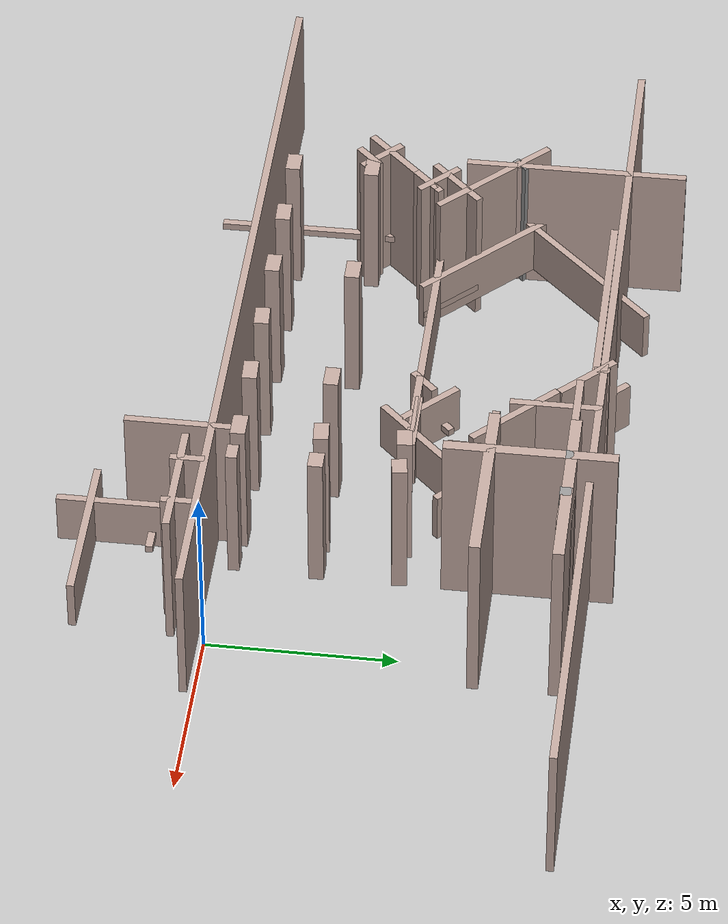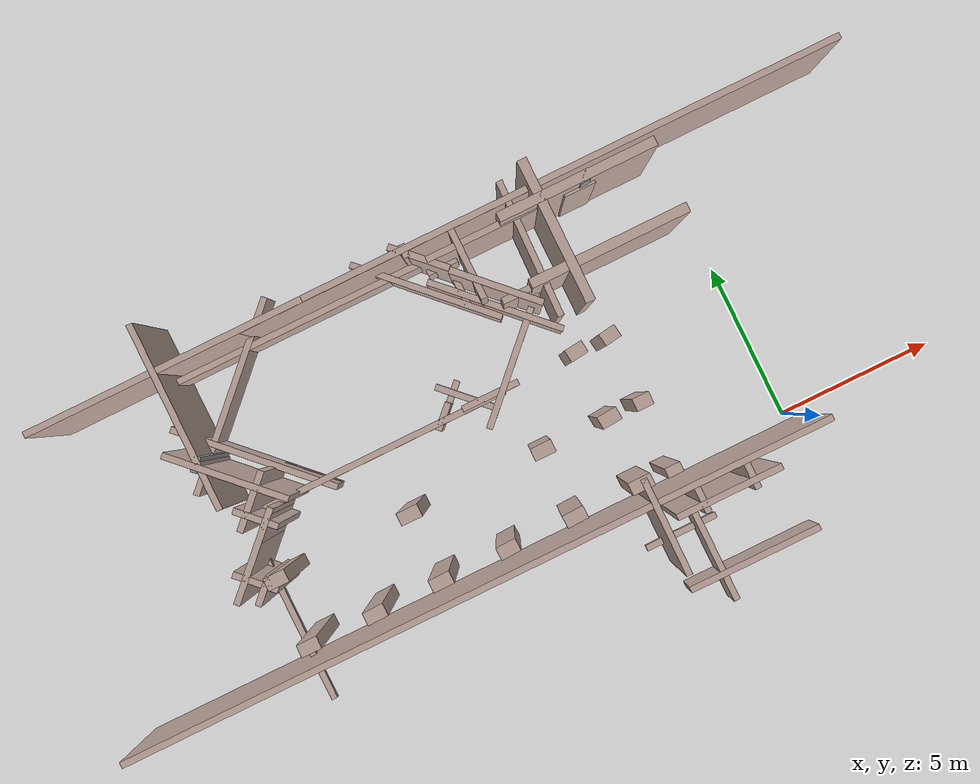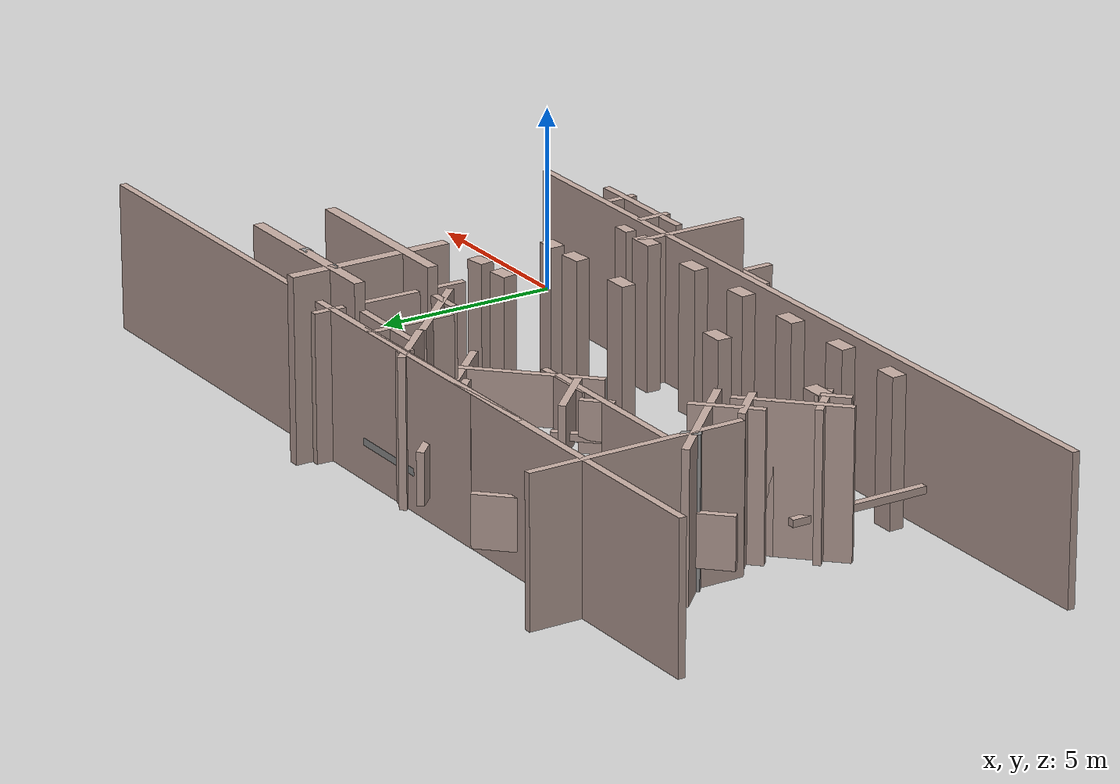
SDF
<sdf version="1.6">
 <model name="gedung_p">
  <pose>0.050512 1.27019 0 0 -0 0</pose>
  <link name="Wall_104">
   <collision name="Wall_104_Collision">
    <geometry><box><size>2.89974 0.2 4.0</size></box></geometry>
    <pose>0 0 1 0 -0 0</pose>
   </collision>
   <visual name="Wall_104_Visual">
    <pose>0 0 1 0 -0 0</pose>
    <geometry><box><size>2.89974 0.2 4.0</size></box></geometry>
    <material>
     <script><uri>file://media/materials/scripts/gazebo.material</uri><name>Gazebo/Grey</name></script>
     <ambient>0.760784 0.662745 0.627451 1</ambient>
    </material>
    <meta><layer>0</layer></meta>
   </visual>
   <pose>-6.41651 6.00131 0 0 -0 -0.785922</pose>
  </link>
  <link name="Wall_105">
   <collision name="Wall_105_Collision">
    <geometry><box><size>1.9 0.2 4.0</size></box></geometry>
    <pose>0 0 1 0 -0 0</pose>
   </collision>
   <visual name="Wall_105_Visual">
    <pose>0 0 1 0 -0 0</pose>
    <geometry><box><size>1.9 0.2 4.0</size></box></geometry>
    <material>
     <script><uri>file://media/materials/scripts/gazebo.material</uri><name>Gazebo/Grey</name></script>
     <ambient>0.760784 0.662745 0.627451 1</ambient>
    </material>
    <meta><layer>0</layer></meta>
   </visual>
   <pose>-5.51451 5.52381 0 0 -0 0</pose>
  </link>
  <link name="Wall_108">
   <collision name="Wall_108_Collision">
    <geometry><box><size>5.0 0.3 5.0</size></box></geometry>
    <pose>0 0 1.25 0 -0 0</pose>
   </collision>
   <visual name="Wall_108_Visual">
    <pose>0 0 1.25 0 -0 0</pose>
    <geometry><box><size>5.0 0.3 5.0</size></box></geometry>
    <material>
     <script><uri>file://media/materials/scripts/gazebo.material</uri><name>Gazebo/Grey</name></script>
     <ambient>0.760784 0.662745 0.627451 1</ambient>
    </material>
    <meta><layer>0</layer></meta>
   </visual>
   <pose>-3.04751 7.6698 0 0 -0 0</pose>
  </link>
  <link name="Wall_11">
   <collision name="Wall_11_Collision">
    <geometry><box><size>3.0 0.2 4.0</size></box></geometry>
    <pose>0 0 1 0 -0 0</pose>
   </collision>
   <visual name="Wall_11_Visual">
    <pose>0 0 1 0 -0 0</pose>
    <geometry><box><size>3.0 0.2 4.0</size></box></geometry>
    <material>
     <script><uri>file://media/materials/scripts/gazebo.material</uri><name>Gazebo/Grey</name></script>
     <ambient>0.760784 0.662745 0.627451 1</ambient>
    </material>
    <meta><layer>0</layer></meta>
   </visual>
   <pose>-16.1925 2.05681 0 0 -0 0.785398</pose>
  </link>
  <link name="Wall_116">
   <collision name="Wall_116_Collision">
    <geometry><box><size>2.40092 0.2 0.2</size></box></geometry>
    <pose>0 0 0.05 0 -0 0</pose>
   </collision>
   <visual name="Wall_116_Visual">
    <pose>0 0 0.05 0 -0 0</pose>
    <geometry><box><size>2.40092 0.2 0.2</size></box></geometry>
    <material>
     <script><uri>file://media/materials/scripts/gazebo.material</uri><name>Gazebo/Grey</name></script>
     <ambient>1 1 1 1</ambient>
    </material>
    <meta><layer>0</layer></meta>
   </visual>
   <pose>-7.82151 8.1548 0 0 -0 3.14159</pose>
  </link>
  <link name="Wall_119">
   <collision name="Wall_119_Collision">
    <geometry><box><size>17.4 0.2 4.0</size></box></geometry>
    <pose>0 0 1 0 -0 0</pose>
   </collision>
   <visual name="Wall_119_Visual">
    <pose>0 0 1 0 -0 0</pose>
    <geometry><box><size>17.4 0.2 4.0</size></box></geometry>
    <material>
     <script><uri>file://media/materials/scripts/gazebo.material</uri><name>Gazebo/Grey</name></script>
     <ambient>0.760784 0.662745 0.627451 1</ambient>
    </material>
    <meta><layer>0</layer></meta>
   </visual>
   <pose>-2.97151 8.1548 0 0 -0 0</pose>
  </link>
  <link name="Wall_122">
   <collision name="Wall_122_Collision">
    <geometry><box><size>4.9 0.2 1.4</size></box></geometry>
    <pose>0 0 0.35 0 -0 0</pose>
   </collision>
   <visual name="Wall_122_Visual">
    <pose>0 0 0.35 0 -0 0</pose>
    <geometry><box><size>4.9 0.2 1.4</size></box></geometry>
    <material>
     <script><uri>file://media/materials/scripts/gazebo.material</uri><name>Gazebo/Grey</name></script>
     <ambient>0.760784 0.662745 0.627451 1</ambient>
    </material>
    <meta><layer>0</layer></meta>
   </visual>
   <pose>-8.34851 6.9748 0 0 -0 -0.785398</pose>
  </link>
  <link name="Wall_124">
   <collision name="Wall_124_Collision">
    <geometry><box><size>2.4 0.2 4.0</size></box></geometry>
    <pose>0 0 1 0 -0 0</pose>
   </collision>
   <visual name="Wall_124_Visual">
    <pose>0 0 1 0 -0 0</pose>
    <geometry><box><size>2.4 0.2 4.0</size></box></geometry>
    <material>
     <script><uri>file://media/materials/scripts/gazebo.material</uri><name>Gazebo/Grey</name></script>
     <ambient>0.760784 0.662745 0.627451 1</ambient>
    </material>
    <meta><layer>0</layer></meta>
   </visual>
   <pose>-6.89351 7.02881 0 0 -0 1.5708</pose>
  </link>
  <link name="Wall_125">
   <collision name="Wall_125_Collision">
    <geometry><box><size>3.9 0.2 4.0</size></box></geometry>
    <pose>0 0 1 0 -0 0</pose>
   </collision>
   <visual name="Wall_125_Visual">
    <pose>0 0 1 0 -0 0</pose>
    <geometry><box><size>3.9 0.2 4.0</size></box></geometry>
    <material>
     <script><uri>file://media/materials/scripts/gazebo.material</uri><name>Gazebo/Grey</name></script>
     <ambient>0.760784 0.662745 0.627451 1</ambient>
    </material>
    <meta><layer>0</layer></meta>
   </visual>
   <pose>-5.96851 7.57881 0 0 -0 0</pose>
  </link>
  <link name="Wall_126">
   <collision name="Wall_126_Collision">
    <geometry><box><size>4.31102 0.2 4.0</size></box></geometry>
    <pose>0 0 1 0 -0 0</pose>
   </collision>
   <visual name="Wall_126_Visual">
    <pose>0 0 1 0 -0 0</pose>
    <geometry><box><size>4.31102 0.2 4.0</size></box></geometry>
    <material>
     <script><uri>file://media/materials/scripts/gazebo.material</uri><name>Gazebo/Grey</name></script>
     <ambient>0.760784 0.662745 0.627451 1</ambient>
    </material>
    <meta><layer>0</layer></meta>
   </visual>
   <pose>-5.06651 6.55131 0 0 -0 -1.59318</pose>
  </link>
  <link name="Wall_128">
   <collision name="Wall_128_Collision">
    <geometry><box><size>4.5 0.3 5.0</size></box></geometry>
    <pose>0 0 1.25 0 -0 0</pose>
   </collision>
   <visual name="Wall_128_Visual">
    <pose>0 0 1.25 0 -0 0</pose>
    <geometry><box><size>4.5 0.3 5.0</size></box></geometry>
    <material>
     <script><uri>file://media/materials/scripts/gazebo.material</uri><name>Gazebo/Grey</name></script>
     <ambient>0.760784 0.662745 0.627451 1</ambient>
    </material>
    <meta><layer>0</layer></meta>
   </visual>
   <pose>-4.22251 6.61981 0 0 -0 -1.5708</pose>
  </link>
  <link name="Wall_129">
   <collision name="Wall_129_Collision">
    <geometry><box><size>5.0 0.3 5.0</size></box></geometry>
    <pose>0 0 1.25 0 -0 0</pose>
   </collision>
   <visual name="Wall_129_Visual">
    <pose>0 0 1.25 0 -0 0</pose>
    <geometry><box><size>5.0 0.3 5.0</size></box></geometry>
    <material>
     <script><uri>file://media/materials/scripts/gazebo.material</uri><name>Gazebo/Grey</name></script>
     <ambient>0.760784 0.662745 0.627451 1</ambient>
    </material>
    <meta><layer>0</layer></meta>
   </visual>
   <pose>-3.04751 5.5698 0 0 -0 0</pose>
  </link>
  <link name="Wall_17">
   <collision name="Wall_17_Collision">
    <geometry><box><size>0.899858 0.2 4.0</size></box></geometry>
    <pose>0 0 1 0 -0 0</pose>
   </collision>
   <visual name="Wall_17_Visual">
    <pose>0 0 1 0 -0 0</pose>
    <geometry><box><size>0.899858 0.2 4.0</size></box></geometry>
    <material>
     <script><uri>file://media/materials/scripts/gazebo.material</uri><name>Gazebo/Grey</name></script>
     <ambient>0.760784 0.662745 0.627451 1</ambient>
    </material>
    <meta><layer>0</layer></meta>
   </visual>
   <pose>-15.574 2.6753 0 0 -0 0.785398</pose>
  </link>
  <link name="Wall_18">
   <collision name="Wall_18_Collision">
    <geometry><box><size>1.4 0.2 4.0</size></box></geometry>
    <pose>0 0 1 0 -0 0</pose>
   </collision>
   <visual name="Wall_18_Visual">
    <pose>0 0 1 0 -0 0</pose>
    <geometry><box><size>1.4 0.2 4.0</size></box></geometry>
    <material>
     <script><uri>file://media/materials/scripts/gazebo.material</uri><name>Gazebo/Grey</name></script>
     <ambient>0.760784 0.662745 0.627451 1</ambient>
    </material>
    <meta><layer>0</layer></meta>
   </visual>
   <pose>-15.6625 3.01131 0 0 -0 2.35502</pose>
  </link>
  <link name="Wall_19">
   <collision name="Wall_19_Collision">
    <geometry><box><size>1.899822 0.2 4.0</size></box></geometry>
    <pose>0 0 1 0 -0 0</pose>
   </collision>
   <visual name="Wall_19_Visual">
    <pose>0 0 1 0 -0 0</pose>
    <geometry><box><size>1.899822 0.2 4.0</size></box></geometry>
    <material>
     <script><uri>file://media/materials/scripts/gazebo.material</uri><name>Gazebo/Grey</name></script>
     <ambient>0.760784 0.662745 0.627451 1</ambient>
    </material>
    <meta><layer>0</layer></meta>
   </visual>
   <pose>-15.574 3.52431 0 0 -0 0.785398</pose>
  </link>
  <link name="Wall_196">
   <collision name="Wall_196_Collision">
    <geometry><box><size>4.4 0.2 1.4</size></box></geometry>
    <pose>0 0 0.35 0 -0 0</pose>
   </collision>
   <visual name="Wall_196_Visual">
    <pose>0 0 0.35 0 -0 0</pose>
    <geometry><box><size>4.4 0.2 1.4</size></box></geometry>
    <material>
     <script><uri>file://media/materials/scripts/gazebo.material</uri><name>Gazebo/Grey</name></script>
     <ambient>0.760784 0.662745 0.627451 1</ambient>
    </material>
    <meta><layer>0</layer></meta>
   </visual>
   <pose>-2.91051 -4.77419 0 0 -0 3.14159</pose>
  </link>
  <link name="Wall_197">
   <collision name="Wall_197_Collision">
    <geometry><box><size>3.4 0.2 1.4</size></box></geometry>
    <pose>0 0 0.35 0 -0 0</pose>
   </collision>
   <visual name="Wall_197_Visual">
    <pose>0 0 0.35 0 -0 0</pose>
    <geometry><box><size>3.4 0.2 1.4</size></box></geometry>
    <material>
     <script><uri>file://media/materials/scripts/gazebo.material</uri><name>Gazebo/Grey</name></script>
     <ambient>0.760784 0.662745 0.627451 1</ambient>
    </material>
    <meta><layer>0</layer></meta>
   </visual>
   <pose>-3.96051 -3.97419 0 0 -0 1.5708</pose>
  </link>
  <link name="Wall_198">
   <collision name="Wall_198_Collision">
    <geometry><box><size>2.4 0.2 0.2</size></box></geometry>
    <pose>0 0 0.05 0 -0 0</pose>
   </collision>
   <visual name="Wall_198_Visual">
    <pose>0 0 0.05 0 -0 0</pose>
    <geometry><box><size>2.4 0.2 0.2</size></box></geometry>
    <material>
     <script><uri>file://media/materials/scripts/gazebo.material</uri><name>Gazebo/Grey</name></script>
     <ambient>0.760784 0.662745 0.627451 1</ambient>
    </material>
    <meta><layer>0</layer></meta>
   </visual>
   <pose>-4.51051 -3.1742 0 0 -0 3.14159</pose>
  </link>
  <link name="Wall_199">
   <collision name="Wall_199_Collision">
    <geometry><box><size>3.10826 0.2 4.0</size></box></geometry>
    <pose>0 0 1 0 -0 0</pose>
   </collision>
   <visual name="Wall_199_Visual">
    <pose>0 0 1 0 -0 0</pose>
    <geometry><box><size>3.10826 0.2 4.0</size></box></geometry>
    <material>
     <script><uri>file://media/materials/scripts/gazebo.material</uri><name>Gazebo/Grey</name></script>
     <ambient>0.760784 0.662745 0.627451 1</ambient>
    </material>
    <meta><layer>0</layer></meta>
   </visual>
   <pose>-5.05601 -2.44719 0 0 -0 1.56461</pose>
  </link>
  <link name="Wall_201">
   <collision name="Wall_201_Collision">
    <geometry><box><size>0.9 0.2 4.0</size></box></geometry>
    <pose>0 0 1 0 -0 0</pose>
   </collision>
   <visual name="Wall_201_Visual">
    <pose>0 0 1 0 -0 0</pose>
    <geometry><box><size>0.9 0.2 4.0</size></box></geometry>
    <material>
     <script><uri>file://media/materials/scripts/gazebo.material</uri><name>Gazebo/Grey</name></script>
     <ambient>0.760784 0.662745 0.627451 1</ambient>
    </material>
    <meta><layer>0</layer></meta>
   </visual>
   <pose>-3.75851 -2.16319 0 0 -0 -1.5708</pose>
  </link>
  <link name="Wall_202">
   <collision name="Wall_202_Collision">
    <geometry><box><size>3.4 0.2 4.0</size></box></geometry>
    <pose>0 0 1 0 -0 0</pose>
   </collision>
   <visual name="Wall_202_Visual">
    <pose>0 0 1 0 -0 0</pose>
    <geometry><box><size>3.4 0.2 4.0</size></box></geometry>
    <material>
     <script><uri>file://media/materials/scripts/gazebo.material</uri><name>Gazebo/Grey</name></script>
     <ambient>0.760784 0.662745 0.627451 1</ambient>
    </material>
    <meta><layer>0</layer></meta>
   </visual>
   <pose>-2.95851 -2.33819 0 0 -0 0</pose>
  </link>
  <link name="Wall_203">
   <collision name="Wall_203_Collision">
    <geometry><box><size>0.900952 0.2 4.0</size></box></geometry>
    <pose>0 0 1 0 -0 0</pose>
   </collision>
   <visual name="Wall_203_Visual">
    <pose>0 0 1 0 -0 0</pose>
    <geometry><box><size>0.900952 0.2 4.0</size></box></geometry>
    <material>
     <script><uri>file://media/materials/scripts/gazebo.material</uri><name>Gazebo/Grey</name></script>
     <ambient>0.760784 0.662745 0.627451 1</ambient>
    </material>
    <meta><layer>0</layer></meta>
   </visual>
   <pose>-2.15851 -2.16319 0 0 -0 1.5708</pose>
  </link>
  <link name="Wall_21">
   <collision name="Wall_21_Collision">
    <geometry><box><size>3.9 0.2 4.0</size></box></geometry>
    <pose>0 0 1 0 -0 0</pose>
   </collision>
   <visual name="Wall_21_Visual">
    <pose>0 0 1 0 -0 0</pose>
    <geometry><box><size>3.9 0.2 4.0</size></box></geometry>
    <material>
     <script><uri>file://media/materials/scripts/gazebo.material</uri><name>Gazebo/Grey</name></script>
     <ambient>0.760784 0.662745 0.627451 1</ambient>
    </material>
    <meta><layer>0</layer></meta>
   </visual>
   <pose>-15.9275 4.47881 0 0 -0 2.35619</pose>
  </link>
  <link name="Wall_218">
   <collision name="Wall_218_Collision">
    <geometry><box><size>0.644524 0.4 4.0</size></box></geometry>
    <pose>0 0 1 0 -0 0</pose>
   </collision>
   <visual name="Wall_218_Visual">
    <pose>0 0 1 0 -0 0</pose>
    <geometry><box><size>0.644524 0.4 4.0</size></box></geometry>
    <material>
     <script><uri>file://media/materials/scripts/gazebo.material</uri><name>Gazebo/Grey</name></script>
     <ambient>0.760784 0.662745 0.627451 1</ambient>
    </material>
    <meta><layer>0</layer></meta>
   </visual>
   <pose>-15.9022 -1.01464 0 0 -0 0</pose>
  </link>
  <link name="Wall_22">
   <collision name="Wall_22_Collision">
    <geometry><box><size>0.493318 0.2 4.0</size></box></geometry>
    <pose>0 0 1 0 -0 0</pose>
   </collision>
   <visual name="Wall_22_Visual">
    <pose>0 0 1 0 -0 0</pose>
    <geometry><box><size>0.493318 0.2 4.0</size></box></geometry>
    <material>
     <script><uri>file://media/materials/scripts/gazebo.material</uri><name>Gazebo/Grey</name></script>
     <ambient>1 1 1 1</ambient>
    </material>
    <meta><layer>0</layer></meta>
   </visual>
   <pose>-16.533 5.1878 0 0 -0 0.848118</pose>
  </link>
  <link name="Wall_220">
   <collision name="Wall_220_Collision">
    <geometry><box><size>0.66193 0.4 4.0</size></box></geometry>
    <pose>0 0 1 0 -0 0</pose>
   </collision>
   <visual name="Wall_220_Visual">
    <pose>0 0 1 0 -0 0</pose>
    <geometry><box><size>0.66193 0.4 4.0</size></box></geometry>
    <material>
     <script><uri>file://media/materials/scripts/gazebo.material</uri><name>Gazebo/Grey</name></script>
     <ambient>0.760784 0.662745 0.627451 1</ambient>
    </material>
    <meta><layer>0</layer></meta>
   </visual>
   <pose>-13.7647 -1.01253 0 0 -0 0.032247</pose>
  </link>
  <link name="Wall_223">
   <collision name="Wall_223_Collision">
    <geometry><box><size>0.67166 0.4 4.0</size></box></geometry>
    <pose>0 0 1 0 -0 0</pose>
   </collision>
   <visual name="Wall_223_Visual">
    <pose>0 0 1 0 -0 0</pose>
    <geometry><box><size>0.67166 0.4 4.0</size></box></geometry>
    <material>
     <script><uri>file://media/materials/scripts/gazebo.material</uri><name>Gazebo/Grey</name></script>
     <ambient>0.760784 0.662745 0.627451 1</ambient>
    </material>
    <meta><layer>0</layer></meta>
   </visual>
   <pose>-15.9129 1.14369 0 0 -0 3.14159</pose>
  </link>
  <link name="Wall_225">
   <collision name="Wall_225_Collision">
    <geometry><box><size>0.673398 0.4 4.0</size></box></geometry>
    <pose>0 0 1 0 -0 0</pose>
   </collision>
   <visual name="Wall_225_Visual">
    <pose>0 0 1 0 -0 0</pose>
    <geometry><box><size>0.673398 0.4 4.0</size></box></geometry>
    <material>
     <script><uri>file://media/materials/scripts/gazebo.material</uri><name>Gazebo/Grey</name></script>
     <ambient>0.760784 0.662745 0.627451 1</ambient>
    </material>
    <meta><layer>0</layer></meta>
   </visual>
   <pose>-11.6269 -1.00331 0 0 -0 0</pose>
  </link>
  <link name="Wall_227">
   <collision name="Wall_227_Collision">
    <geometry><box><size>0.641584 0.4 4.0</size></box></geometry>
    <pose>0 0 1 0 -0 0</pose>
   </collision>
   <visual name="Wall_227_Visual">
    <pose>0 0 1 0 -0 0</pose>
    <geometry><box><size>0.641584 0.4 4.0</size></box></geometry>
    <material>
     <script><uri>file://media/materials/scripts/gazebo.material</uri><name>Gazebo/Grey</name></script>
     <ambient>0.760784 0.662745 0.627451 1</ambient>
    </material>
    <meta><layer>0</layer></meta>
   </visual>
   <pose>-9.46431 -1.01152 0 0 -0 0.045423</pose>
  </link>
  <link name="Wall_229">
   <collision name="Wall_229_Collision">
    <geometry><box><size>0.684544 0.4 4.0</size></box></geometry>
    <pose>0 0 1 0 -0 0</pose>
   </collision>
   <visual name="Wall_229_Visual">
    <pose>0 0 1 0 -0 0</pose>
    <geometry><box><size>0.684544 0.4 4.0</size></box></geometry>
    <material>
     <script><uri>file://media/materials/scripts/gazebo.material</uri><name>Gazebo/Grey</name></script>
     <ambient>0.760784 0.662745 0.627451 1</ambient>
    </material>
    <meta><layer>0</layer></meta>
   </visual>
   <pose>-7.30446 -1.02245 0 0 -0 -3.10315</pose>
  </link>
  <link name="Wall_23">
   <collision name="Wall_23_Collision">
    <geometry><box><size>6.0 0.2 4.0</size></box></geometry>
    <pose>0 0 1 0 -0 0</pose>
   </collision>
   <visual name="Wall_23_Visual">
    <pose>0 0 1 0 -0 0</pose>
    <geometry><box><size>6.0 0.2 4.0</size></box></geometry>
    <material>
     <script><uri>file://media/materials/scripts/gazebo.material</uri><name>Gazebo/Grey</name></script>
     <ambient>0.760784 0.662745 0.627451 1</ambient>
    </material>
    <meta><layer>0</layer></meta>
   </visual>
   <pose>-16.4845 6.6928 0 0 -0 1.5708</pose>
  </link>
  <link name="Wall_231">
   <collision name="Wall_231_Collision">
    <geometry><box><size>0.717142 0.4 4.0</size></box></geometry>
    <pose>0 0 1 0 -0 0</pose>
   </collision>
   <visual name="Wall_231_Visual">
    <pose>0 0 1 0 -0 0</pose>
    <geometry><box><size>0.717142 0.4 4.0</size></box></geometry>
    <material>
     <script><uri>file://media/materials/scripts/gazebo.material</uri><name>Gazebo/Grey</name></script>
     <ambient>0.760784 0.662745 0.627451 1</ambient>
    </material>
    <meta><layer>0</layer></meta>
   </visual>
   <pose>-5.16375 -1.01425 0 0 -0 3.14159</pose>
  </link>
  <link name="Wall_25">
   <collision name="Wall_25_Collision">
    <geometry><box><size>16.4078 0.2 4.0</size></box></geometry>
    <pose>0 0 1 0 -0 0</pose>
   </collision>
   <visual name="Wall_25_Visual">
    <pose>0 0 1 0 -0 0</pose>
    <geometry><box><size>16.4078 0.2 4.0</size></box></geometry>
    <material>
     <script><uri>file://media/materials/scripts/gazebo.material</uri><name>Gazebo/Grey</name></script>
     <ambient>0.760784 0.662745 0.627451 1</ambient>
    </material>
    <meta><layer>0</layer></meta>
   </visual>
   <pose>-12.4325 8.1463 0 0 -0 0.000864</pose>
  </link>
  <link name="Wall_26">
   <collision name="Wall_26_Collision">
    <geometry><box><size>7.1878 0.2 4.0</size></box></geometry>
    <pose>0 0 1 0 -0 0</pose>
   </collision>
   <visual name="Wall_26_Visual">
    <pose>0 0 1 0 -0 0</pose>
    <geometry><box><size>7.1878 0.2 4.0</size></box></geometry>
    <material>
     <script><uri>file://media/materials/scripts/gazebo.material</uri><name>Gazebo/Grey</name></script>
     <ambient>0.760784 0.662745 0.627451 1</ambient>
    </material>
    <meta><layer>0</layer></meta>
   </visual>
   <pose>-10.1275 8.1463 0 0 -0 -3.13959</pose>
  </link>
  <link name="Wall_266">
   <collision name="Wall_266_Collision">
    <geometry><box><size>0.66846 0.4 4.0</size></box></geometry>
    <pose>0 0 1 0 -0 0</pose>
   </collision>
   <visual name="Wall_266_Visual">
    <pose>0 0 1 0 -0 0</pose>
    <geometry><box><size>0.66846 0.4 4.0</size></box></geometry>
    <material>
     <script><uri>file://media/materials/scripts/gazebo.material</uri><name>Gazebo/Grey</name></script>
     <ambient>0.760784 0.662745 0.627451 1</ambient>
    </material>
    <meta><layer>0</layer></meta>
   </visual>
   <pose>-11.6102 1.14518 0 0 -0 0</pose>
  </link>
  <link name="Wall_268">
   <collision name="Wall_268_Collision">
    <geometry><box><size>0.667778 0.4 4.0</size></box></geometry>
    <pose>0 0 1 0 -0 0</pose>
   </collision>
   <visual name="Wall_268_Visual">
    <pose>0 0 1 0 -0 0</pose>
    <geometry><box><size>0.667778 0.4 4.0</size></box></geometry>
    <material>
     <script><uri>file://media/materials/scripts/gazebo.material</uri><name>Gazebo/Grey</name></script>
     <ambient>0.760784 0.662745 0.627451 1</ambient>
    </material>
    <meta><layer>0</layer></meta>
   </visual>
   <pose>-7.29702 1.12605 0 0 -0 3.14159</pose>
  </link>
  <link name="Wall_270">
   <collision name="Wall_270_Collision">
    <geometry><box><size>0.63032 0.4 4.0</size></box></geometry>
    <pose>0 0 1 0 -0 0</pose>
   </collision>
   <visual name="Wall_270_Visual">
    <pose>0 0 1 0 -0 0</pose>
    <geometry><box><size>0.63032 0.4 4.0</size></box></geometry>
    <material>
     <script><uri>file://media/materials/scripts/gazebo.material</uri><name>Gazebo/Grey</name></script>
     <ambient>0.760784 0.662745 0.627451 1</ambient>
    </material>
    <meta><layer>0</layer></meta>
   </visual>
   <pose>-5.1548 1.12127 0 0 -0 0.083141</pose>
  </link>
  <link name="Wall_272">
   <collision name="Wall_272_Collision">
    <geometry><box><size>0.53389 0.4 4.0</size></box></geometry>
    <pose>0 0 1 0 -0 0</pose>
   </collision>
   <visual name="Wall_272_Visual">
    <pose>0 0 1 0 -0 0</pose>
    <geometry><box><size>0.53389 0.4 4.0</size></box></geometry>
    <material>
     <script><uri>file://media/materials/scripts/gazebo.material</uri><name>Gazebo/Grey</name></script>
     <ambient>0.760784 0.662745 0.627451 1</ambient>
    </material>
    <meta><layer>0</layer></meta>
   </visual>
   <pose>-4.06934 1.12605 0 0 -0 0</pose>
  </link>
  <link name="Wall_274">
   <collision name="Wall_274_Collision">
    <geometry><box><size>0.573202 0.4 4.0</size></box></geometry>
    <pose>0 0 1 0 -0 0</pose>
   </collision>
   <visual name="Wall_274_Visual">
    <pose>0 0 1 0 -0 0</pose>
    <geometry><box><size>0.573202 0.4 4.0</size></box></geometry>
    <material>
     <script><uri>file://media/materials/scripts/gazebo.material</uri><name>Gazebo/Grey</name></script>
     <ambient>0.760784 0.662745 0.627451 1</ambient>
    </material>
    <meta><layer>0</layer></meta>
   </visual>
   <pose>-5.16914 3.28263 0 0 -0 0.110657</pose>
  </link>
  <link name="Wall_276">
   <collision name="Wall_276_Collision">
    <geometry><box><size>0.535248 0.4 4.0</size></box></geometry>
    <pose>0 0 1 0 -0 0</pose>
   </collision>
   <visual name="Wall_276_Visual">
    <pose>0 0 1 0 -0 0</pose>
    <geometry><box><size>0.535248 0.4 4.0</size></box></geometry>
    <material>
     <script><uri>file://media/materials/scripts/gazebo.material</uri><name>Gazebo/Grey</name></script>
     <ambient>0.760784 0.662745 0.627451 1</ambient>
    </material>
    <meta><layer>0</layer></meta>
   </visual>
   <pose>-4.08846 3.27306 0 0 -0 0.141897</pose>
  </link>
  <link name="Wall_278">
   <collision name="Wall_278_Collision">
    <geometry><box><size>1.0 0.4 4.0</size></box></geometry>
    <pose>0 0 1 0 -0 0</pose>
   </collision>
   <visual name="Wall_278_Visual">
    <pose>0 0 1 0 -0 0</pose>
    <geometry><box><size>1.0 0.4 4.0</size></box></geometry>
    <material>
     <script><uri>file://media/materials/scripts/gazebo.material</uri><name>Gazebo/Grey</name></script>
     <ambient>0.760784 0.662745 0.627451 1</ambient>
    </material>
    <meta><layer>0</layer></meta>
   </visual>
   <pose>-3.00554 7.6387 0 0 -0 0</pose>
  </link>
  <link name="Wall_279">
   <collision name="Wall_279_Collision">
    <geometry><box><size>0.3 0.3 5.0</size></box></geometry>
    <pose>0 0 1.25 0 -0 0</pose>
   </collision>
   <visual name="Wall_279_Visual">
    <pose>0 0 1.25 0 -0 0</pose>
    <geometry><box><size>0.3 0.3 5.0</size></box></geometry>
    <material>
     <script><uri>file://media/materials/scripts/gazebo.material</uri><name>Gazebo/Grey</name></script>
     <ambient>1 1 1 1</ambient>
    </material>
    <meta><layer>0</layer></meta>
   </visual>
   <pose>-2.85554 7.6387 0 0 -0 0</pose>
  </link>
  <link name="Wall_28">
   <collision name="Wall_28_Collision">
    <geometry><box><size>0.414774 0.2 4.0</size></box></geometry>
    <pose>0 0 1 0 -0 0</pose>
   </collision>
   <visual name="Wall_28_Visual">
    <pose>0 0 1 0 -0 0</pose>
    <geometry><box><size>0.414774 0.2 4.0</size></box></geometry>
    <material>
     <script><uri>file://media/materials/scripts/gazebo.material</uri><name>Gazebo/Grey</name></script>
     <ambient>0.760784 0.662745 0.627451 1</ambient>
    </material>
    <meta><layer>0</layer></meta>
   </visual>
   <pose>-8.38251 8.0963 0 0 -0 -1.60816</pose>
  </link>
  <link name="Wall_285">
   <collision name="Wall_285_Collision">
    <geometry><box><size>0.5 0.3 4.0</size></box></geometry>
    <pose>0 0 1 0 -0 0</pose>
   </collision>
   <visual name="Wall_285_Visual">
    <pose>0 0 1 0 -0 0</pose>
    <geometry><box><size>0.5 0.3 4.0</size></box></geometry>
    <material>
     <script><uri>file://media/materials/scripts/gazebo.material</uri><name>Gazebo/Grey</name></script>
     <ambient>0.760784 0.662745 0.627451 1</ambient>
    </material>
    <meta><layer>0</layer></meta>
   </visual>
   <pose>-4.12951 -1.05419 0 0 -0 0</pose>
  </link>
  <link name="Wall_29">
   <collision name="Wall_29_Collision">
    <geometry><box><size>1.9 0.2 4.0</size></box></geometry>
    <pose>0 0 1 0 -0 0</pose>
   </collision>
   <visual name="Wall_29_Visual">
    <pose>0 0 1 0 -0 0</pose>
    <geometry><box><size>1.9 0.2 4.0</size></box></geometry>
    <material>
     <script><uri>file://media/materials/scripts/gazebo.material</uri><name>Gazebo/Grey</name></script>
     <ambient>0.760784 0.662745 0.627451 1</ambient>
    </material>
    <meta><layer>0</layer></meta>
   </visual>
   <pose>-8.08401 7.7423 0 0 -0 -0.785398</pose>
  </link>
  <link name="Wall_30">
   <collision name="Wall_30_Collision">
    <geometry><box><size>1.0 0.2 1.4</size></box></geometry>
    <pose>0 0 0.35 0 -0 0</pose>
   </collision>
   <visual name="Wall_30_Visual">
    <pose>0 0 0.35 0 -0 0</pose>
    <geometry><box><size>1.0 0.2 1.4</size></box></geometry>
    <material>
     <script><uri>file://media/materials/scripts/gazebo.material</uri><name>Gazebo/Grey</name></script>
     <ambient>0.760784 0.662745 0.627451 1</ambient>
    </material>
    <meta><layer>0</layer></meta>
   </visual>
   <pose>-7.58351 7.4418 0 0 -0 0</pose>
  </link>
  <link name="Wall_36">
   <collision name="Wall_36_Collision">
    <geometry><box><size>4.4 0.2 1.4</size></box></geometry>
    <pose>0 0 0.35 0 -0 0</pose>
   </collision>
   <visual name="Wall_36_Visual">
    <pose>0 0 0.35 0 -0 0</pose>
    <geometry><box><size>4.4 0.2 1.4</size></box></geometry>
    <material>
     <script><uri>file://media/materials/scripts/gazebo.material</uri><name>Gazebo/Grey</name></script>
     <ambient>0.760784 0.662745 0.627451 1</ambient>
    </material>
    <meta><layer>0</layer></meta>
   </visual>
   <pose>-6.64101 5.64931 0 0 -0 -0.785398</pose>
  </link>
  <link name="Wall_38">
   <collision name="Wall_38_Collision">
    <geometry><box><size>4.9 0.2 1.4</size></box></geometry>
    <pose>0 0 0.35 0 -0 0</pose>
   </collision>
   <visual name="Wall_38_Visual">
    <pose>0 0 0.35 0 -0 0</pose>
    <geometry><box><size>4.9 0.2 1.4</size></box></geometry>
    <material>
     <script><uri>file://media/materials/scripts/gazebo.material</uri><name>Gazebo/Grey</name></script>
     <ambient>0.760784 0.662745 0.627451 1</ambient>
    </material>
    <meta><layer>0</layer></meta>
   </visual>
   <pose>-6.72951 4.0758 0 0 -0 -2.35619</pose>
  </link>
  <link name="Wall_39">
   <collision name="Wall_39_Collision">
    <geometry><box><size>1.899402 0.2 1.4</size></box></geometry>
    <pose>0 0 0.35 0 -0 0</pose>
   </collision>
   <visual name="Wall_39_Visual">
    <pose>0 0 0.35 0 -0 0</pose>
    <geometry><box><size>1.899402 0.2 1.4</size></box></geometry>
    <material>
     <script><uri>file://media/materials/scripts/gazebo.material</uri><name>Gazebo/Grey</name></script>
     <ambient>0.760784 0.662745 0.627451 1</ambient>
    </material>
    <meta><layer>0</layer></meta>
   </visual>
   <pose>-7.98551 3.2448 0 0 -0 3.14159</pose>
  </link>
  <link name="Wall_40">
   <collision name="Wall_40_Collision">
    <geometry><box><size>1.899884 0.2 1.4</size></box></geometry>
    <pose>0 0 0.35 0 -0 0</pose>
   </collision>
   <visual name="Wall_40_Visual">
    <pose>0 0 0.35 0 -0 0</pose>
    <geometry><box><size>1.899884 0.2 1.4</size></box></geometry>
    <material>
     <script><uri>file://media/materials/scripts/gazebo.material</uri><name>Gazebo/Grey</name></script>
     <ambient>0.760784 0.662745 0.627451 1</ambient>
    </material>
    <meta><layer>0</layer></meta>
   </visual>
   <pose>-8.71101 3.5453 0 0 -0 2.35619</pose>
  </link>
  <link name="Wall_42">
   <collision name="Wall_42_Collision">
    <geometry><box><size>1.399154 0.2 0.2</size></box></geometry>
    <pose>0 0 0.05 0 -0 0</pose>
   </collision>
   <visual name="Wall_42_Visual">
    <pose>0 0 0.05 0 -0 0</pose>
    <geometry><box><size>1.399154 0.2 0.2</size></box></geometry>
    <material>
     <script><uri>file://media/materials/scripts/gazebo.material</uri><name>Gazebo/Grey</name></script>
     <ambient>0.760784 0.662745 0.627451 1</ambient>
    </material>
    <meta><layer>0</layer></meta>
   </visual>
   <pose>-9.22351 3.63381 0 0 -0 -2.35619</pose>
  </link>
  <link name="Wall_45">
   <collision name="Wall_45_Collision">
    <geometry><box><size>0.899902 0.2 1.4</size></box></geometry>
    <pose>0 0 0.35 0 -0 0</pose>
   </collision>
   <visual name="Wall_45_Visual">
    <pose>0 0 0.35 0 -0 0</pose>
    <geometry><box><size>0.899902 0.2 1.4</size></box></geometry>
    <material>
     <script><uri>file://media/materials/scripts/gazebo.material</uri><name>Gazebo/Grey</name></script>
     <ambient>0.760784 0.662745 0.627451 1</ambient>
    </material>
    <meta><layer>0</layer></meta>
   </visual>
   <pose>-9.55901 3.29831 0 0 -0 -2.35619</pose>
  </link>
  <link name="Wall_46">
   <collision name="Wall_46_Collision">
    <geometry><box><size>8.4 0.2 1.4</size></box></geometry>
    <pose>0 0 0.35 0 -0 0</pose>
   </collision>
   <visual name="Wall_46_Visual">
    <pose>0 0 0.35 0 -0 0</pose>
    <geometry><box><size>8.4 0.2 1.4</size></box></geometry>
    <material>
     <script><uri>file://media/materials/scripts/gazebo.material</uri><name>Gazebo/Grey</name></script>
     <ambient>0.760784 0.662745 0.627451 1</ambient>
    </material>
    <meta><layer>0</layer></meta>
   </visual>
   <pose>-11.7325 3.17481 0 0 -0 3.14159</pose>
  </link>
  <link name="Wall_48">
   <collision name="Wall_48_Collision">
    <geometry><box><size>1.10602 0.2 1.4</size></box></geometry>
    <pose>0 0 0.35 0 -0 0</pose>
   </collision>
   <visual name="Wall_48_Visual">
    <pose>0 0 0.35 0 -0 0</pose>
    <geometry><box><size>1.10602 0.2 1.4</size></box></geometry>
    <material>
     <script><uri>file://media/materials/scripts/gazebo.material</uri><name>Gazebo/Grey</name></script>
     <ambient>0.760784 0.662745 0.627451 1</ambient>
    </material>
    <meta><layer>0</layer></meta>
   </visual>
   <pose>-7.38501 6.61831 0 0 -0 -1.56417</pose>
  </link>
  <link name="Wall_5">
   <collision name="Wall_5_Collision">
    <geometry><box><size>5.4 0.2 0.2</size></box></geometry>
    <pose>0 0 0.05 0 -0 0</pose>
   </collision>
   <visual name="Wall_5_Visual">
    <pose>0 0 0.05 0 -0 0</pose>
    <geometry><box><size>5.4 0.2 0.2</size></box></geometry>
    <material>
     <script><uri>file://media/materials/scripts/gazebo.material</uri><name>Gazebo/Grey</name></script>
     <ambient>0.760784 0.662745 0.627451 1</ambient>
    </material>
    <meta><layer>0</layer></meta>
   </visual>
   <pose>-16.5105 -0.410195 0 0 -0 -1.5708</pose>
  </link>
  <link name="Wall_52">
   <collision name="Wall_52_Collision">
    <geometry><box><size>1.394016 0.2 0.2</size></box></geometry>
    <pose>0 0 0.05 0 -0 0</pose>
   </collision>
   <visual name="Wall_52_Visual">
    <pose>0 0 0.05 0 -0 0</pose>
    <geometry><box><size>1.394016 0.2 0.2</size></box></geometry>
    <material>
     <script><uri>file://media/materials/scripts/gazebo.material</uri><name>Gazebo/Grey</name></script>
     <ambient>0.760784 0.662745 0.627451 1</ambient>
    </material>
    <meta><layer>0</layer></meta>
   </visual>
   <pose>-7.38501 7.1433 0 0 -0 1.56577</pose>
  </link>
  <link name="Wall_54">
   <collision name="Wall_54_Collision">
    <geometry><box><size>1.9 0.2 0.2</size></box></geometry>
    <pose>0 0 0.05 0 -0 0</pose>
   </collision>
   <visual name="Wall_54_Visual">
    <pose>0 0 0.05 0 -0 0</pose>
    <geometry><box><size>1.9 0.2 0.2</size></box></geometry>
    <material>
     <script><uri>file://media/materials/scripts/gazebo.material</uri><name>Gazebo/Grey</name></script>
     <ambient>0.760784 0.662745 0.627451 1</ambient>
    </material>
    <meta><layer>0</layer></meta>
   </visual>
   <pose>-14.083 3.47531 0 0 -0 2.35619</pose>
  </link>
  <link name="Wall_55">
   <collision name="Wall_55_Collision">
    <geometry><box><size>5.4 0.2 1.4</size></box></geometry>
    <pose>0 0 0.35 0 -0 0</pose>
   </collision>
   <visual name="Wall_55_Visual">
    <pose>0 0 0.35 0 -0 0</pose>
    <geometry><box><size>5.4 0.2 1.4</size></box></geometry>
    <material>
     <script><uri>file://media/materials/scripts/gazebo.material</uri><name>Gazebo/Grey</name></script>
     <ambient>0.760784 0.662745 0.627451 1</ambient>
    </material>
    <meta><layer>0</layer></meta>
   </visual>
   <pose>-15.3025 4.6948 0 0 -0 2.35619</pose>
  </link>
  <link name="Wall_6">
   <collision name="Wall_6_Collision">
    <geometry><box><size>23.0 0.2 4.0</size></box></geometry>
    <pose>0 0 1 0 -0 0</pose>
   </collision>
   <visual name="Wall_6_Visual">
    <pose>0 0 1 0 -0 0</pose>
    <geometry><box><size>23.0 0.2 4.0</size></box></geometry>
    <material>
     <script><uri>file://media/materials/scripts/gazebo.material</uri><name>Gazebo/Grey</name></script>
     <ambient>0.760784 0.662745 0.627451 1</ambient>
    </material>
    <meta><layer>0</layer></meta>
   </visual>
   <pose>-10.8105 -1.71019 0 0 -0 0</pose>
  </link>
  <link name="Wall_8">
   <collision name="Wall_8_Collision">
    <geometry><box><size>0.9 0.2 4.0</size></box></geometry>
    <pose>0 0 1 0 -0 0</pose>
   </collision>
   <visual name="Wall_8_Visual">
    <pose>0 0 1 0 -0 0</pose>
    <geometry><box><size>0.9 0.2 4.0</size></box></geometry>
    <material>
     <script><uri>file://media/materials/scripts/gazebo.material</uri><name>Gazebo/Grey</name></script>
     <ambient>0.760784 0.662745 0.627451 1</ambient>
    </material>
    <meta><layer>0</layer></meta>
   </visual>
   <pose>-16.387 1.0133 0 0 -0 0.785398</pose>
  </link>
  <link name="Wall_84">
   <collision name="Wall_84_Collision">
    <geometry><box><size>6.4 0.2 1.4</size></box></geometry>
    <pose>0 0 0.35 0 -0 0</pose>
   </collision>
   <visual name="Wall_84_Visual">
    <pose>0 0 0.35 0 -0 0</pose>
    <geometry><box><size>6.4 0.2 1.4</size></box></geometry>
    <material>
     <script><uri>file://media/materials/scripts/gazebo.material</uri><name>Gazebo/Grey</name></script>
     <ambient>0.760784 0.662745 0.627451 1</ambient>
    </material>
    <meta><layer>0</layer></meta>
   </visual>
   <pose>-15.1255 6.70981 0 0 -0 0.785398</pose>
  </link>
  <link name="Wall_86">
   <collision name="Wall_86_Collision">
    <geometry><box><size>9.9 0.2 1.4</size></box></geometry>
    <pose>0 0 0.35 0 -0 0</pose>
   </collision>
   <visual name="Wall_86_Visual">
    <pose>0 0 0.35 0 -0 0</pose>
    <geometry><box><size>9.9 0.2 1.4</size></box></geometry>
    <material>
     <script><uri>file://media/materials/scripts/gazebo.material</uri><name>Gazebo/Grey</name></script>
     <ambient>0.760784 0.662745 0.627451 1</ambient>
    </material>
    <meta><layer>0</layer></meta>
   </visual>
   <pose>-11.6045 7.80581 0 0 -0 0</pose>
  </link>
  <link name="Wall_89">
   <collision name="Wall_89_Collision">
    <geometry><box><size>0.3 0.3 5.0</size></box></geometry>
    <pose>0 0 1.25 0 -0 0</pose>
   </collision>
   <visual name="Wall_89_Visual">
    <pose>0 0 1.25 0 -0 0</pose>
    <geometry><box><size>0.3 0.3 5.0</size></box></geometry>
    <material>
     <script><uri>file://media/materials/scripts/gazebo.material</uri><name>Gazebo/Grey</name></script>
     <ambient>1 1 1 1</ambient>
    </material>
    <meta><layer>0</layer></meta>
   </visual>
   <pose>-4.22251 7.6698 0 0 -0 0</pose>
  </link>
  <link name="Wall_9">
   <collision name="Wall_9_Collision">
    <geometry><box><size>1.4 0.2 4.0</size></box></geometry>
    <pose>0 0 1 0 -0 0</pose>
   </collision>
   <visual name="Wall_9_Visual">
    <pose>0 0 1 0 -0 0</pose>
    <geometry><box><size>1.4 0.2 4.0</size></box></geometry>
    <material>
     <script><uri>file://media/materials/scripts/gazebo.material</uri><name>Gazebo/Grey</name></script>
     <ambient>0.760784 0.662745 0.627451 1</ambient>
    </material>
    <meta><layer>0</layer></meta>
   </visual>
   <pose>-16.4755 1.3493 0 0 -0 2.35502</pose>
  </link>
  <link name="Wall_96">
   <collision name="Wall_96_Collision">
    <geometry><box><size>0.3 0.3 5.0</size></box></geometry>
    <pose>0 0 1.25 0 -0 0</pose>
   </collision>
   <visual name="Wall_96_Visual">
    <pose>0 0 1.25 0 -0 0</pose>
    <geometry><box><size>0.3 0.3 5.0</size></box></geometry>
    <material>
     <script><uri>file://media/materials/scripts/gazebo.material</uri><name>Gazebo/Grey</name></script>
     <ambient>1 1 1 1</ambient>
    </material>
    <meta><layer>0</layer></meta>
   </visual>
   <pose>-4.22251 7.6698 0 0 -0 0</pose>
  </link>
  <static>1</static>
 </model>
</sdf>
